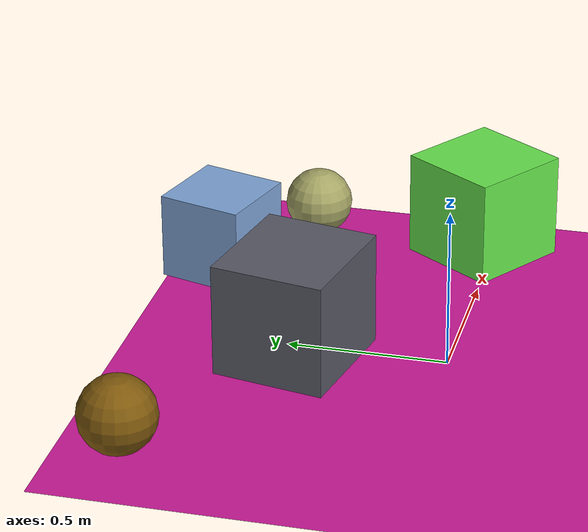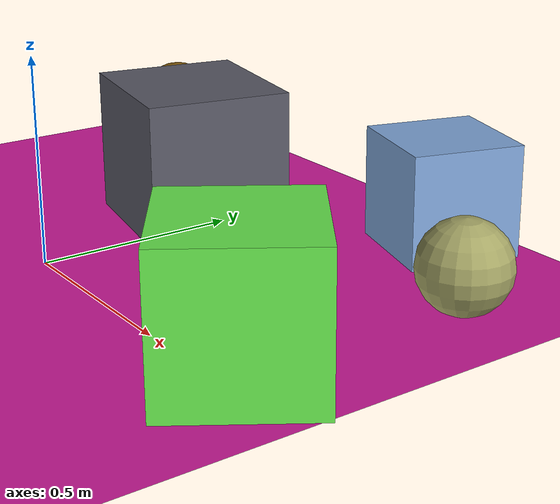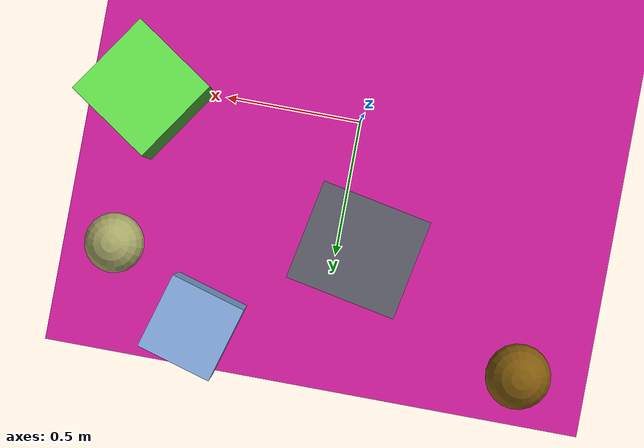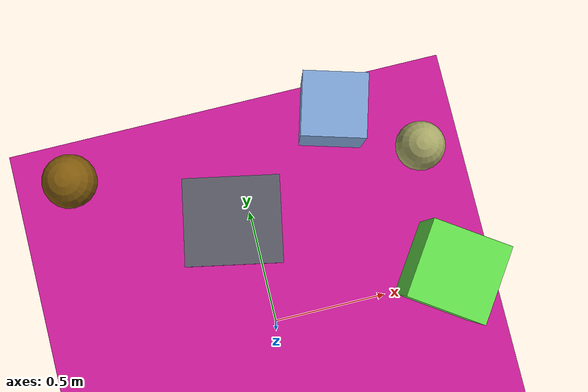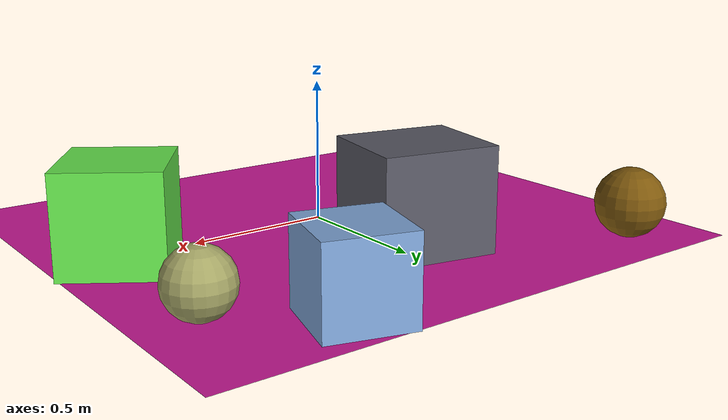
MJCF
<mujoco>
   <asset>
<texture type="skybox" builtin="gradient" rgb1="0.6 0.7 0.3" rgb2="0.3 0.2 0.6" width="256" height="256"/>
<texture name="gradient_0" builtin="gradient" rgb1="0.4 0.4 0.0" rgb2="0.3 0.3 0.8" width="200" height="200"/>
<texture name="flat_1" builtin="flat" rgb1="0.4 0.9 0.3" rgb2="0.4 0.9 0.3"  width="200" height="200"/>
<texture name="checker_2" builtin="checker" rgb1="0.9 0.2 0.0" rgb2="0.1 0.5 0.1" width="200" height="200"/>
<texture name="checker_3" builtin="checker" rgb1="0.7 0.4 0.5" rgb2="0.6 0.9 0.3" width="200" height="200"/>
<texture name="gradient_4" builtin="gradient" rgb1="0.7 0.5 1.0" rgb2="0.3 0.8 0.7" width="200" height="200"/><material name="gradient_0_mat" reflectance="0" texture="gradient_0" texuniform="true"/>
<material name="flat_1_mat" reflectance="0" texture="flat_1" texuniform="true"/>
<material name="checker_2_mat" reflectance="0" texrepeat="5 5" texture="checker_2" texuniform="false" />
<material name="checker_3_mat" reflectance="0" texrepeat="7 7" texture="checker_3" texuniform="false" />
<material name="gradient_4_mat" reflectance="0" texture="gradient_4" texuniform="true"/>
   </asset>

   <worldbody>
      <light diffuse=".9 .9 .9" pos="0 0 3" dir="0 0 -1"/>
     <geom type="plane" size="1 1 0.1" rgba="0.8 0.1 0.6 1"/>
<geom type="box" pos="-0.07 0.46 0.18" size="0.18 0.2 0.18" material="gradient_0_mat" euler="0 0 79" />
<geom type="box" pos="0.78 0.04 0.17" size="0.17 0.17 0.17" material="flat_1_mat" euler="0 0 56" />
<geom type="sphere" pos="-0.73 0.81 0.12" size="0.12 0.12 0.12" material="checker_2_mat" euler="0 0 51" />
<geom type="sphere" pos="0.8 0.6 0.11" size="0.11 0.11 0.11" material="checker_3_mat" euler="0 0 18" />
<geom type="box" pos="0.46 0.84 0.14" size="0.14 0.14 0.14" material="gradient_4_mat" euler="0 0 74" /><camera euler="60 0 180" fovy="60" name="camera1" pos="-0.2 -1.5 1"></camera>   </worldbody>
</mujoco>
